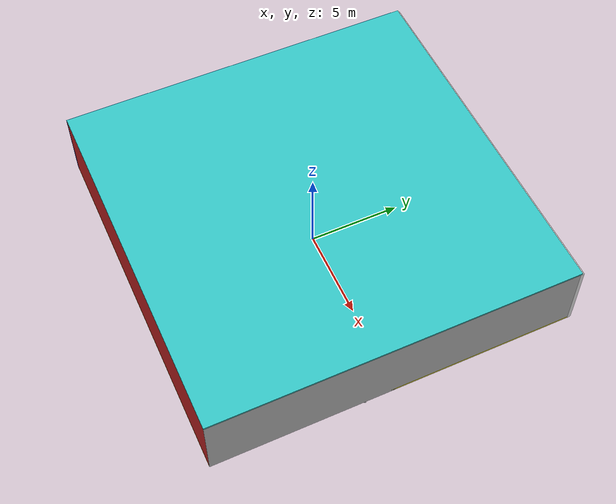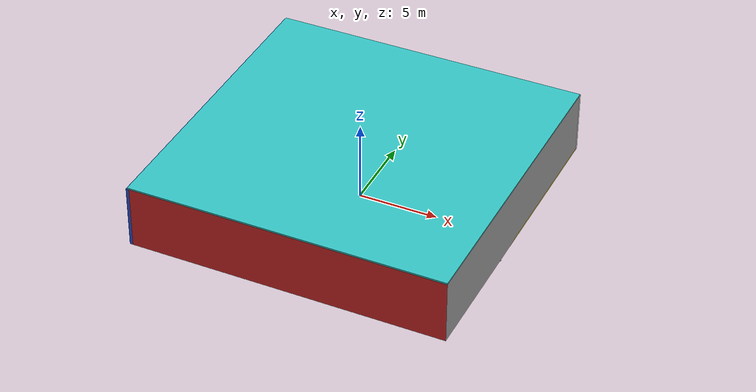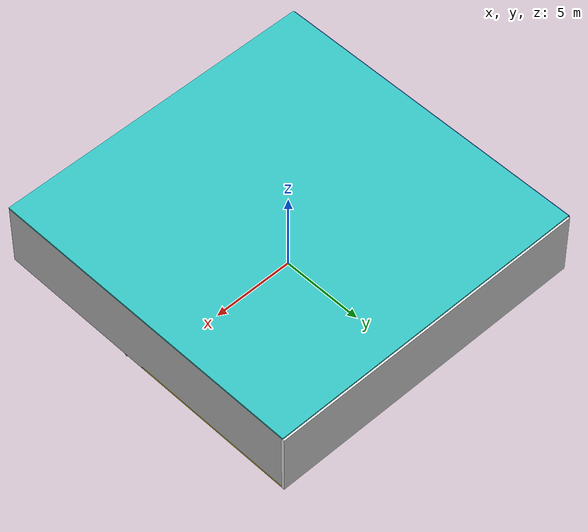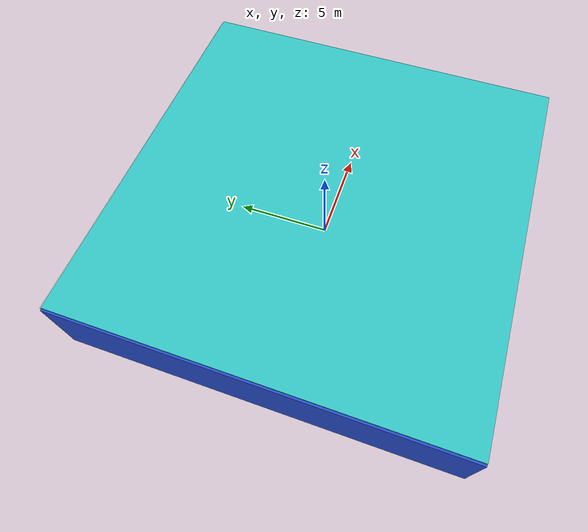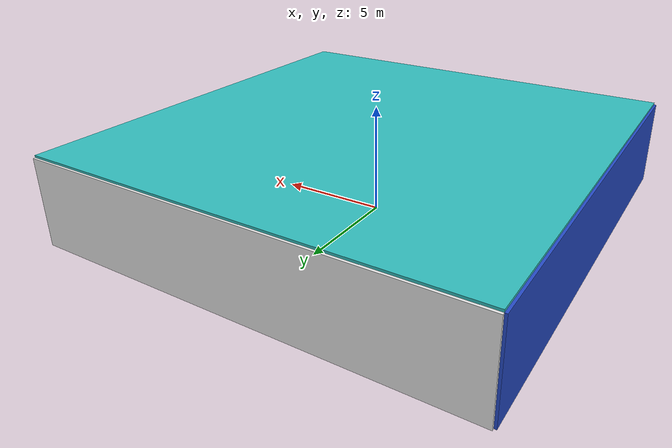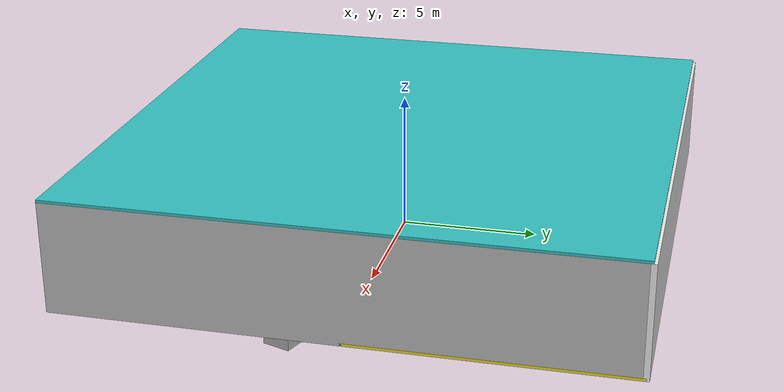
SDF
<sdf version="1.4">
 <world name="default">
  <physics type="ode">
   <max_step_size>0.001</max_step_size>
   <real_time_factor>1</real_time_factor>
   <real_time_update_rate>1000</real_time_update_rate>
   <gravity>0 0 -9.8</gravity>
  </physics>
  <scene><ambient>0.4 0.4 0.4 1</ambient><background>0.7 0.7 0.7 1</background><shadows>1</shadows></scene>
  <model name="Surrounding">
   <static>1</static>
   <link name="Ceiling">
    <collision name="Ceiling_Collision"><geometry><box><size>20 20 0.1</size></box></geometry></collision>
    <visual name="Ceiling_Visual">
     <geometry><box><size>20 20 0.1</size></box></geometry>
     <material>
      <script>
       <uri>file://media/materials/scripts/gazebo.material</uri>
       <name>Gazebo/TurquoiseGlowOutline</name>
      </script>
     </material>
    </visual>
    <pose>0 0 4.05 0 0 0</pose>
   </link>
   <link name="Wall_South">
    <collision name="Wall_South_Collision">
     <geometry><box><size>20 0 4</size></box></geometry>
     <pose>0 0 2 0 -0 0</pose>
    </collision>
    <visual name="Wall_South_Visual">
     <pose>0 0 2 0 -0 0</pose>
     <geometry><box><size>20 0 4</size></box></geometry>
     <material>
      <script><uri>file://media/materials/scripts/gazebo.material</uri><name>Gazebo/Red</name></script>
     </material>
    </visual>
    <velocity_decay><linear>0</linear><angular>0</angular></velocity_decay>
    <pose>0 -10 0 0 -0 0</pose>
   </link>
   <link name="Wall_East">
    <collision name="Wall_21_Collision">
     <geometry><box><size>20 0 4</size></box></geometry>
     <pose>0 0 2 0 -0 0</pose>
    </collision>
    <visual name="Wall_21_Visual">
     <pose>0 0 2 0 -0 0</pose>
     <geometry><box><size>20 0 4</size></box></geometry>
     <material>
      <script><uri>file://media/materials/scripts/gazebo.material</uri><name>Gazebo/CloudySky</name></script>
     </material>
    </visual>
    <velocity_decay><linear>0</linear><angular>0</angular></velocity_decay>
    <pose>10 0 0 0 -0 1.5708</pose>
   </link>
   <link name="Wall_North">
    <collision name="Wall_22_Collision">
     <geometry><box><size>20 0.2 4</size></box></geometry>
     <pose>0 0 2 0 -0 0</pose>
    </collision>
    <visual name="Wall_22_Visual">
     <pose>0 0 2 0 -0 0</pose>
     <geometry><box><size>20 0.2 4</size></box></geometry>
     <material>
      <script><uri>file://media/materials/scripts/gazebo.material</uri><name>Gazebo/White</name></script>
     </material>
    </visual>
    <velocity_decay><linear>0</linear><angular>0</angular></velocity_decay>
    <pose>0 10 0 0 -0 0</pose>
   </link>
   <link name="Wall_West">
    <collision name="Wall_23_Collision">
     <geometry><box><size>20 0.2 4</size></box></geometry>
     <pose>0 0 2 0 -0 0</pose>
    </collision>
    <visual name="Wall_23_Visual">
     <pose>0 0 2 0 -0 0</pose>
     <geometry><box><size>20 0.2 4</size></box></geometry>
     <material>
      <script><uri>file://media/materials/scripts/gazebo.material</uri><name>Gazebo/BlueLaser</name></script>
     </material>
    </visual>
    <velocity_decay><linear>0</linear><angular>0</angular></velocity_decay>
    <pose>-10 0 0 0 0 -1.5708</pose>
   </link>
   <link name="Ground_link">
    <collision name="collision">
     <pose>0 0 .05 0 -0 0</pose>
     <geometry><box><size>20 20 0.1</size></box></geometry>
    </collision>
    <visual name="visual">
     <pose>0 0 .05 0 -0 0</pose>
     <geometry><box><size>20 20 0.1</size></box></geometry>
     <material>
      <script><uri>file://media/materials/scripts/gazebo.material</uri><name>Gazebo/Yellow</name></script>
     </material>
    </visual>
   </link>
   <static>1</static>
  </model>
  <spherical_coordinates>
   <surface_model>EARTH_WGS84</surface_model>
   <latitude_deg>0</latitude_deg>
   <longitude_deg>0</longitude_deg>
   <elevation>0</elevation>
   <heading_deg>0</heading_deg>
  </spherical_coordinates>
  <light name="lightball_0" type="diffuse">
   <diffuse>0.8 0.8 0.8 1</diffuse>
   <specular>0.2 0.2 0.2 1</specular>
   <attenuation>
    <range>100</range>
    <constant>0.7</constant>
    <linear>0.01</linear>
    <quadratic>0.001</quadratic>
   </attenuation>
   <direction>-0.5 0.1 -0.9</direction>
   <pose>3.52858820751 -6.07125729765 3.06904081616 0 0 0</pose>
  </light>
  <light name="lightball_1" type="diffuse">
   <diffuse>0.8 0.8 0.8 1</diffuse>
   <specular>0.2 0.2 0.2 1</specular>
   <attenuation>
    <range>100</range>
    <constant>0.7</constant>
    <linear>0.01</linear>
    <quadratic>0.001</quadratic>
   </attenuation>
   <direction>-0.5 0.1 -0.9</direction>
   <pose>9.4885975949 -6.61011159771 1.71783346794 0 0 0</pose>
  </light>
  <light name="lightball_2" type="diffuse">
   <diffuse>0.8 0.8 0.8 1</diffuse>
   <specular>0.2 0.2 0.2 1</specular>
   <attenuation>
    <range>100</range>
    <constant>0.7</constant>
    <linear>0.01</linear>
    <quadratic>0.001</quadratic>
   </attenuation>
   <direction>-0.5 0.1 -0.9</direction>
   <pose>-5.17732254976 2.27883695842 3.74852063228 0 0 0</pose>
  </light>
  <light name="lightball_3" type="diffuse">
   <diffuse>0.8 0.8 0.8 1</diffuse>
   <specular>0.2 0.2 0.2 1</specular>
   <attenuation>
    <range>100</range>
    <constant>0.7</constant>
    <linear>0.01</linear>
    <quadratic>0.001</quadratic>
   </attenuation>
   <direction>-0.5 0.1 -0.9</direction>
   <pose>3.57652794875 3.7499530562 0.870397226649 0 0 0</pose>
  </light>
  <light name="lightball_4" type="diffuse">
   <diffuse>0.8 0.8 0.8 1</diffuse>
   <specular>0.2 0.2 0.2 1</specular>
   <attenuation>
    <range>100</range>
    <constant>0.7</constant>
    <linear>0.01</linear>
    <quadratic>0.001</quadratic>
   </attenuation>
   <direction>-0.5 0.1 -0.9</direction>
   <pose>-2.53096661661 0.27833090587 1.63945220346 0 0 0</pose>
  </light>
  <light name="lightball_5" type="diffuse">
   <diffuse>0.8 0.8 0.8 1</diffuse>
   <specular>0.2 0.2 0.2 1</specular>
   <attenuation>
    <range>100</range>
    <constant>0.7</constant>
    <linear>0.01</linear>
    <quadratic>0.001</quadratic>
   </attenuation>
   <direction>-0.5 0.1 -0.9</direction>
   <pose>5.45055188748 -8.35018357744 2.57658002095 0 0 0</pose>
  </light>
  <include><uri>model://cabinet</uri><pose>-4.15284968425 -4.96565510584 0 0 0 3.03497838219</pose></include>
  <include><uri>model://cabinet</uri><pose>-3.93037950644 5.52163407633 0 0 0 0.036216891016</pose></include>
  <include>
   <uri>model://robocup_3Dsim_goal</uri>
   <pose>-4.0815634322 7.45382732633 0 0 0 0.0878537129082</pose>
  </include>
  <include><uri>model://cabinet</uri><pose>-1.97658224903 2.1971281912 0 0 0 2.564642889</pose></include>
  <include><uri>model://cabinet</uri><pose>4.9889779135 -2.57888123623 0 0 0 1.80852330708</pose></include>
  <include>
   <uri>model://textured_shapes</uri>
   <pose>7.77521043898 -1.38271491199 0 0 0 1.23157817521</pose>
  </include>
  <include>
   <uri>model://construction_cone</uri>
   <pose>8.43422179379 4.75198464002 0 0 0 1.55786056809</pose>
  </include>
 </world>
</sdf>

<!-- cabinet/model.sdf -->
<sdf version="1.5">
  <model name="cabinet">
    <static>true</static>
    <link name="cabinet_bottom_plate">
      <inertial>
        <pose>0 0 -1 0 0 0</pose>
        <inertia>
          <ixx>2.050000</ixx>
          <ixy>0</ixy>
          <ixz>0</ixz>
          <iyy>2.050000</iyy>
          <iyz>0</iyz>
          <izz>2.050000</izz>
        </inertia>
        <mass>25.000000</mass>
      </inertial>
      <collision name="cabinet_bottom_plate_geom">
        <pose>0 0 0.010000 0 0 0</pose>
        <geometry>
          <box>
            <size>0.450000 0.450000 0.020000</size>
          </box>
        </geometry>
      </collision>
      <visual name="cabinet_bottom_plate_geom_visual">
        <pose>0 0 0.010000 0 0 0</pose>
        <geometry>
          <box>
            <size>0.450000 0.450000 0.020000</size>
          </box>
        </geometry>
        <material>
          <script>
            <uri>model://media/materials/scripts/gazebo.material</uri>
            <name>Gazebo/Wood</name>
          </script>
        </material>
      </visual>
      <collision name="cabinet_bottom_plate_geom_cabinet_back_plate">
        <pose>0.235000 0 0.510000 0 0 0</pose>
        <geometry>
          <box>
            <size>0.020000 0.450000 1.020000</size>
          </box>
        </geometry>
      </collision>
      <visual name="cabinet_bottom_plate_geom_cabinet_back_plate_visual">
        <pose>0.235000 0 0.510000 0 0 0</pose>
        <geometry>
          <box>
            <size>0.020000 0.450000 1.020000</size>
          </box>
        </geometry>
        <material>
          <script>
            <uri>model://media/materials/scripts/gazebo.material</uri>
            <name>Gazebo/Wood</name>
          </script>
        </material>
      </visual>
      <collision name="cabinet_bottom_plate_geom_cabinet_left_plate">
        <pose>0 0.235000 0.510000 0 0 0</pose>
        <geometry>
          <box>
            <size>0.450000 0.020000 1.020000</size>
          </box>
        </geometry>
      </collision>
      <visual name="cabinet_bottom_plate_geom_cabinet_left_plate_visual">
        <pose>0 0.235000 0.510000 0 0 0</pose>
        <geometry>
          <box>
            <size>0.450000 0.020000 1.020000</size>
          </box>
        </geometry>
        <material>
          <script>
            <uri>model://media/materials/scripts/gazebo.material</uri>
            <name>Gazebo/Wood</name>
          </script>
        </material>
      </visual>
      <collision name="cabinet_bottom_plate_geom_cabinet_middle_plate">
        <pose>0 0 0.510000 0 0 0</pose>
        <geometry>
          <box>
            <size>0.450000 0.450000 0.020000</size>
          </box>
        </geometry>
      </collision>
      <visual name="cabinet_bottom_plate_geom_cabinet_middle_plate_visual">
        <pose>0 0 0.510000 0 0 0</pose>
        <geometry>
          <box>
            <size>0.450000 0.450000 0.020000</size>
          </box>
        </geometry>
        <material>
          <script>
            <uri>model://media/materials/scripts/gazebo.material</uri>
            <name>Gazebo/Wood</name>
          </script>
        </material>
      </visual>
      <collision name="cabinet_bottom_plate_geom_cabinet_right_plate">
        <pose>0 -0.235000 0.510000 0 0 0</pose>
        <geometry>
          <box>
            <size>0.450000 0.020000 1.020000</size>
          </box>
        </geometry>
      </collision>
      <visual name="cabinet_bottom_plate_geom_cabinet_right_plate_visual">
        <pose>0 -0.235000 0.510000 0 0 0</pose>
        <geometry>
          <box>
            <size>0.450000 0.020000 1.020000</size>
          </box>
        </geometry>
        <material>
          <script>
            <uri>model://media/materials/scripts/gazebo.material</uri>
            <name>Gazebo/Wood</name>
          </script>
        </material>
      </visual>
      <collision name="cabinet_bottom_plate_geom_cabinet_top_plate">
        <pose>0 0 1.010000 0 0 0</pose>
        <geometry>
          <box>
            <size>0.450000 0.450000 0.020000</size>
          </box>
        </geometry>
      </collision>
      <visual name="cabinet_bottom_plate_geom_cabinet_top_plate_visual">
        <pose>0 0 1.010000 0 0 0</pose>
        <geometry>
          <box>
            <size>0.450000 0.450000 0.020000</size>
          </box>
        </geometry>
        <material>
          <script>
            <uri>model://media/materials/scripts/gazebo.material</uri>
            <name>Gazebo/Wood</name>
          </script>
        </material>
      </visual>
    </link>
  </model>
</sdf>

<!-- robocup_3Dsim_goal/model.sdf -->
<sdf version="1.5">
  <model name="robocup_3d_goal">
    <static>true</static>
    <link name="left_post">
      <pose>0 1.05 0.45 0 0 0</pose>
      <collision name="collision">
        <geometry>
          <cylinder>
            <radius>0.05</radius>
            <length>0.9</length>
          </cylinder>
        </geometry>
      </collision>
      <visual name="visual">
        <geometry>
          <cylinder>
            <radius>0.05</radius>
            <length>0.9</length>
          </cylinder>
        </geometry>
        <material>
          <script>
            <uri>file://media/materials/scripts/gazebo.material</uri>
            <name>Gazebo/ZincYellow</name>
          </script>
        </material>
      </visual>
    </link>
    <link name="left_support_horiz_lower">
      <pose>0.30 1.05 0.01 0 0 0</pose>
      <collision name="collision">
        <geometry>
          <box>
            <size>0.50 0.02 0.02</size>
          </box>
        </geometry>
      </collision>
      <visual name="visual">
        <geometry>
          <box>
            <size>0.50 0.02 0.02</size>
          </box>
        </geometry>
        <material>
          <script>
            <uri>file://media/materials/scripts/gazebo.material</uri>
            <name>Gazebo/White</name>
          </script>
        </material>
      </visual>
    </link>
    <link name="left_support_horiz_upper">
      <pose>0.30 1.05 0.79 0 0 0</pose>
      <collision name="collision">
        <geometry>
          <box>
            <size>0.50 0.02 0.02</size>
          </box>
        </geometry>
      </collision>
      <visual name="visual">
        <geometry>
          <box>
            <size>0.50 0.02 0.02</size>
          </box>
        </geometry>
        <material>
          <script>
            <uri>file://media/materials/scripts/gazebo.material</uri>
            <name>Gazebo/White</name>
          </script>
        </material>
      </visual>
    </link>
    <link name="left_support_vertical">
      <pose>0.56 1.05 0.4 0 1.5708 0</pose>
      <collision name="collision">
        <geometry>
          <box>
            <size>0.80 0.02 0.02</size>
          </box>
        </geometry>
      </collision>
      <visual name="visual">
        <geometry>
          <box>
            <size>0.80 0.02 0.02</size>
          </box>
        </geometry>
        <material>
          <script>
            <uri>file://media/materials/scripts/gazebo.material</uri>
            <name>Gazebo/White</name>
          </script>
        </material>
      </visual>
    </link>
    <link name="right_support_horiz_lower">
      <pose>0.30 -1.05 0.01 0 0 0</pose>
      <collision name="collision">
        <geometry>
          <box>
            <size>0.50 0.02 0.02</size>
          </box>
        </geometry>
      </collision>
      <visual name="visual">
        <geometry>
          <box>
            <size>0.50 0.02 0.02</size>
          </box>
        </geometry>
        <material>
          <script>
            <uri>file://media/materials/scripts/gazebo.material</uri>
            <name>Gazebo/White</name>
          </script>
        </material>
      </visual>
    </link>
    <link name="right_support_horiz_upper">
      <pose>0.30 -1.05 0.79 0 0 0</pose>
      <collision name="collision">
        <geometry>
          <box>
            <size>0.50 0.02 0.02</size>
          </box>
        </geometry>
      </collision>
      <visual name="visual">
        <geometry>
          <box>
            <size>0.50 0.02 0.02</size>
          </box>
        </geometry>
        <material>
          <script>
            <uri>file://media/materials/scripts/gazebo.material</uri>
            <name>Gazebo/White</name>
          </script>
        </material>
      </visual>
    </link>
    <link name="right_support_vertical">
      <pose>0.56 -1.05 0.4 0 1.5708 0</pose>
      <collision name="collision">
        <geometry>
          <box>
            <size>0.80 0.02 0.02</size>
          </box>
        </geometry>
      </collision>
      <visual name="visual">
        <geometry>
          <box>
            <size>0.80 0.02 0.02</size>
          </box>
        </geometry>
        <material>
          <script>
            <uri>file://media/materials/scripts/gazebo.material</uri>
            <name>Gazebo/White</name>
          </script>
        </material>
      </visual>
    </link>
    <link name="center_support_horiz_lower">
      <pose>0.56 0 0.01 0 1.5708 0</pose>
      <collision name="collision">
        <geometry>
          <box>
            <size>0.02 2.08 0.02</size>
          </box>
        </geometry>
      </collision>
      <visual name="visual">
        <geometry>
          <box>
            <size>0.02 2.08 0.02</size>
          </box>
        </geometry>
        <material>
          <script>
            <uri>file://media/materials/scripts/gazebo.material</uri>
            <name>Gazebo/White</name>
          </script>
        </material>
      </visual>
    </link>
    <link name="center_support_horiz_upper">
      <pose>0.56 0 0.79 0 1.5708 0</pose>
      <collision name="collision">
        <geometry>
          <box>
            <size>0.02 2.08 0.02</size>
          </box>
        </geometry>
      </collision>
      <visual name="visual">
        <geometry>
          <box>
            <size>0.02 2.08 0.02</size>
          </box>
        </geometry>
        <material>
          <script>
            <uri>file://media/materials/scripts/gazebo.material</uri>
            <name>Gazebo/White</name>
          </script>
        </material>
      </visual>
    </link>
    <link name="right_post">
      <pose>0 -1.05 0.45 0 0 0</pose>
      <collision name="collision">
        <geometry>
          <cylinder>
            <radius>0.05</radius>
            <length>0.9</length>
          </cylinder>
        </geometry>
      </collision>
      <visual name="visual">
        <geometry>
          <cylinder>
            <radius>0.05</radius>
            <length>0.9</length>
          </cylinder>
        </geometry>
        <material>
          <script>
            <uri>file://media/materials/scripts/gazebo.material</uri>
            <name>Gazebo/ZincYellow</name>
          </script>
        </material>
      </visual>
    </link>
    <link name="crossbar">
      <pose>0 0 0.85 1.57 1.57 0</pose>
      <collision name="collision">
        <geometry>
          <cylinder>
            <radius>0.05</radius>
            <length>2.0</length>
          </cylinder>
        </geometry>
      </collision>
      <visual name="visual">
        <geometry>
          <cylinder>
            <radius>0.05</radius>
            <length>2.0</length>
          </cylinder>
        </geometry>
        <material>
          <script>
            <uri>file://media/materials/scripts/gazebo.material</uri>
            <name>Gazebo/ZincYellow</name>
          </script>
        </material>
      </visual>
    </link>
    <link name="center_net">
      <pose>0.56 0 0.40 0 0 0</pose>
      <collision name="collision">
        <geometry>
          <box>
            <size>0.01 2.1 0.80</size>
          </box>
        </geometry>
      </collision>
      <visual name="visual">
        <geometry>
          <box>
            <size>0.01 2.1 0.80</size>
          </box>
        </geometry>
        <material>
          <script>
            <uri>model://../model_source/models/robocup09_spl_field/materials/scripts/</uri>
            <uri>model://../model_source/models/robocup09_spl_field/materials/textures/</uri>
            <name>RoboCup/Net</name>
          </script>
        </material>
      </visual>
    </link>
    <link name="left_net">
      <pose>0.30 1.05 0.40 0 0 0</pose>
      <collision name="collision">
        <geometry>
          <box>
            <size>0.50 0.01 0.76</size>
          </box>
        </geometry>
      </collision>
      <visual name="visual">
        <geometry>
          <box>
            <size>0.50 0.01 0.76</size>
          </box>
        </geometry>
        <material>
          <script>
            <uri>model://../model_source/models/robocup09_spl_field/materials/scripts/</uri>
            <uri>model://../model_source/models/robocup09_spl_field/materials/textures/</uri>
            <name>RoboCup/Net</name>
          </script>
        </material>
      </visual>
    </link>
    <link name="right_net">
      <pose>0.30 -1.05 0.40 0 0 0</pose>
      <collision name="collision">
        <geometry>
          <box>
            <size>0.50 0.01 0.76</size>
          </box>
        </geometry>
      </collision>
      <visual name="visual">
        <geometry>
          <box>
            <size>0.50 0.01 0.76</size>
          </box>
        </geometry>
        <material>
          <script>
            <uri>model://../model_source/models/robocup09_spl_field/materials/scripts/</uri>
            <uri>model://../model_source/models/robocup09_spl_field/materials/textures/</uri>
            <name>RoboCup/Net</name>
          </script>
        </material>
      </visual>
    </link>
  </model>
</sdf>

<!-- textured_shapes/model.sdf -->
<sdf version="1.6">
  <model name="textured_shapes">
    <pose>0 0 0.5 0 0 0</pose>
    <link name="box">
      <pose>0 -1.5 0 0 0 0</pose>
      <collision name="collision">
        <geometry>
          <box>
            <size>1 1 1</size>
          </box>
        </geometry>
      </collision>
      <visual name="visual">
        <geometry>
          <box>
            <size>1 1 1</size>
          </box>
        </geometry>
        <material>
          <script>
            <uri>model://../model_source/models/textured_shapes/materials/scripts</uri>
            <uri>model://../model_source/models/textured_shapes/materials/textures</uri>
            <name>TexturedShape/Squares</name>
          </script>
        </material>
      </visual>
    </link>
    <link name="sphere">
      <collision name="collision">
        <geometry>
          <sphere>
            <radius>0.5</radius>
          </sphere>
        </geometry>
      </collision>
      <visual name="visual">
        <geometry>
          <sphere>
            <radius>0.5</radius>
          </sphere>
        </geometry>
        <material>
          <script>
            <uri>model://../model_source/models/textured_shapes/materials/scripts</uri>
            <uri>model://../model_source/models/textured_shapes/materials/textures</uri>
            <name>TexturedShape/Squares</name>
          </script>
        </material>
      </visual>
    </link>
    <link name="cylinder">
      <pose>0 1.5 0 0 0 0</pose>
      <collision name="collision">
        <geometry>
          <cylinder>
            <radius>0.5</radius>
            <length>1</length>
          </cylinder>
        </geometry>
      </collision>
      <visual name="visual">
        <geometry>
          <cylinder>
            <radius>0.5</radius>
            <length>1</length>
          </cylinder>
        </geometry>
        <material>
          <script>
            <uri>model://../model_source/models/textured_shapes/materials/scripts</uri>
            <uri>model://../model_source/models/textured_shapes/materials/textures</uri>
            <name>TexturedShape/Squares</name>
          </script>
        </material>
      </visual>
    </link>
  </model>
</sdf>

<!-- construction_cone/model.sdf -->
<sdf version="1.5">
  <model name="Construction Cone">
    <link name="link">
      <collision name="collision">
        <geometry>
          <mesh>
            <scale>10 10 10</scale>
            <uri>file://isr-testbed/construction_cone/meshes/construction_cone.dae</uri>
          </mesh>
        </geometry>
      </collision>
      <visual name="visual">
        <geometry>
          <mesh>
            <scale>10 10 10</scale>
            <uri>file://isr-testbed/construction_cone/meshes/construction_cone.dae</uri>
          </mesh>
        </geometry>
      </visual>
    </link>
  </model>
</sdf>
